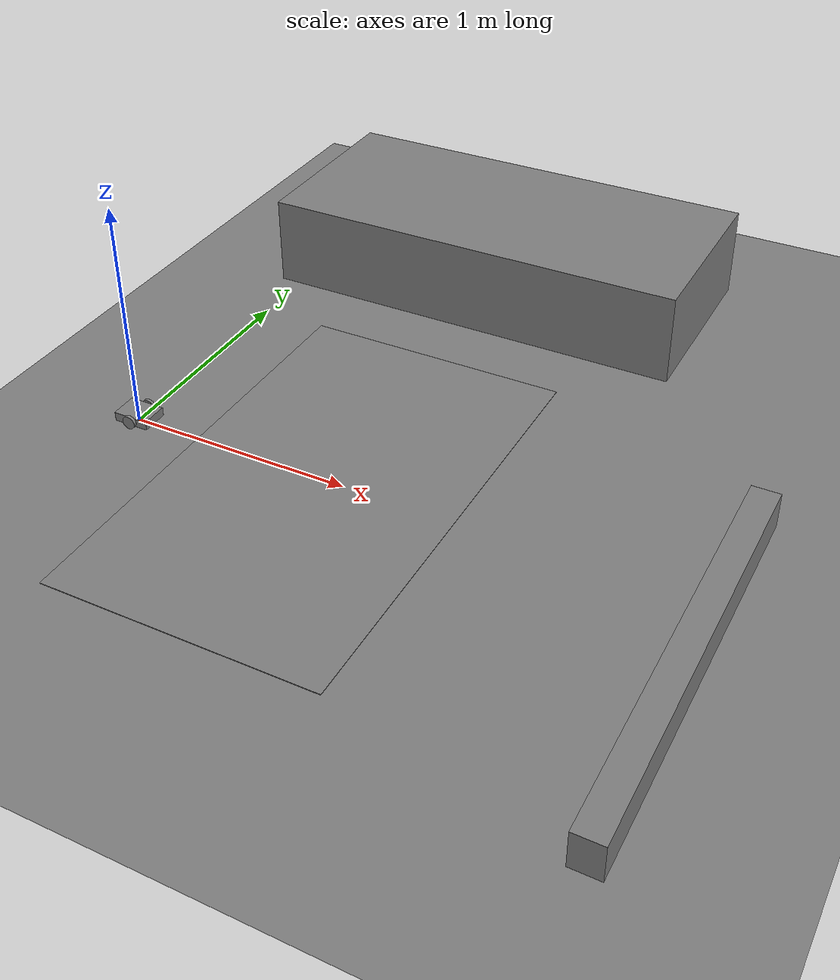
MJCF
<mujoco model="desk-rover-living-room">
  <option timestep="0.002" integrator="implicitfast"/>
  <worldbody>
    <geom name="floor" type="plane" size="5 5 0.1" friction="0.8 0.005 0.0001"/>
    <geom name="rug" type="box" pos="0.9 0 0.0015" size="0.6 1 0.0015" friction="1.4 0.02 0.002"/>
    <geom name="wall" type="box" pos="2.55 -0.35 0.08" size="0.06 0.9 0.08"/>
    <geom name="sofa" type="box" pos="0.9 1.75 0.21" size="1.0 0.45 0.21"/>
    <body name="rover" pos="0 0 0.03">
      <freejoint/>
      <geom name="chassis" type="box" size="0.08 0.06 0.02" mass="0.25"/>
      <body name="wheel_l_body" pos="0 0.068 0">
        <joint name="wheel_l_joint" type="hinge" axis="0 1 0"/>
        <geom name="wheel_l" type="cylinder" size="0.03 0.007" euler="90 0 0" mass="0.018"/>
      </body>
      <body name="wheel_r_body" pos="0 -0.068 0">
        <joint name="wheel_r_joint" type="hinge" axis="0 1 0"/>
        <geom name="wheel_r" type="cylinder" size="0.03 0.007" euler="90 0 0" mass="0.018"/>
      </body>
      <geom name="caster" type="sphere" pos="-0.065 0 -0.022" size="0.008" mass="0.006"/>
    </body>
  </worldbody>
  <actuator>
    <velocity name="drive_l" joint="wheel_l_joint" kv="0.05" ctrlrange="-16.755 16.755"/>
    <velocity name="drive_r" joint="wheel_r_joint" kv="0.05" ctrlrange="-16.755 16.755"/>
  </actuator>
</mujoco>
